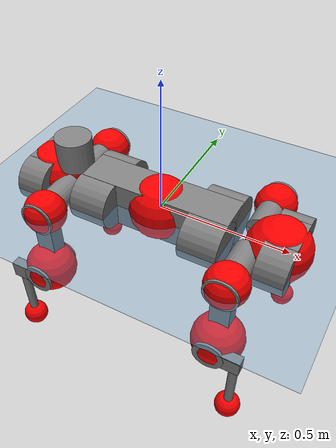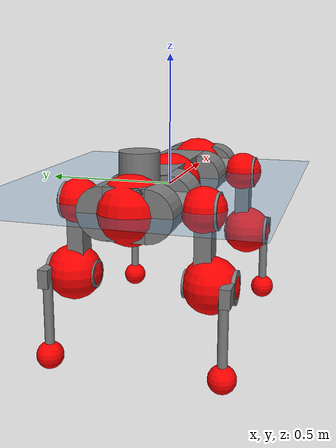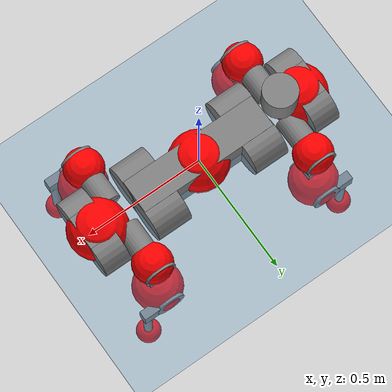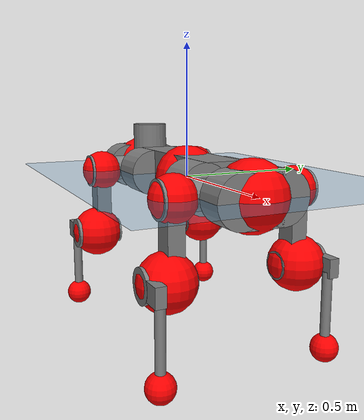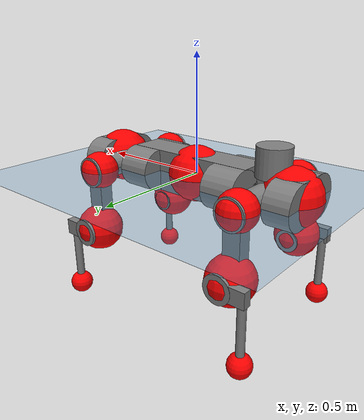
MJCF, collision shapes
<mujoco model="anymal_c">
  <compiler angle="radian" assetdir="assets" balanceinertia="true" inertiafromgeom="false"/>

  <option timestep="0.005" density="1.2" viscosity="2e-05"/>

  <size nkey="1"/>

  <visual>
    <quality shadowsize="8192"/>
    <map shadowclip="0.5"/>
  </visual>

  <default>
    <default class="/">
      <material specular="0" shininess="0.25"/>
      <geom contype="0" conaffinity="0" group="1" solref="-1000 -80"/>
      <site size="0.01 0.005 0.005" group="5"/>
      <general forcelimited="true" forcerange="-80 80" biastype="affine" gainprm="80" biasprm="0 -80 -2"/>
      <default class="anymal_c">
        <joint armature="0.01" damping="0.01" frictionloss="0.1"/>
        <default class="visual">
          <geom type="mesh" group="2"/>
          <default class="visual_zflip"/>
        </default>
        <default class="collision">
          <geom type="cylinder" group="3"/>
          <default class="foot">
            <geom size="0.03 0 0" type="sphere" condim="6" priority="1" friction="0.8 0.02 0.01" solimp="0.015 1 0.03"/>
          </default>
        </default>
      </default>
      <default class="reward_collision_sphere">
        <geom group="5" rgba="1 0 0 1"/>
      </default>
    </default>
  </default>

  <asset>
    <texture type="skybox" colorspace="auto" name="//unnamed_texture_0" builtin="gradient" rgb1="0.95 0.95 0.95" rgb2="0.95 0.95 0.95" width="100" height="600"/>
    <texture type="2d" colorspace="auto" name="texplane" builtin="checker" rgb1="0.345 0.575 0.748" rgb2="0.345 0.575 0.748" markrgb="1 1 1" width="512" height="512"/>
    <texture type="2d" colorspace="linear" name="base" file="base.png"/>
    <texture type="2d" colorspace="linear" name="top_shell" file="top_shell.png"/>
    <texture type="2d" colorspace="linear" name="bottom_shell" file="bottom_shell.png"/>
    <texture type="2d" colorspace="linear" name="remote" file="remote.png"/>
    <texture type="2d" colorspace="linear" name="hatch" file="hatch.png"/>
    <texture type="2d" colorspace="linear" name="handle" file="handle.png"/>
    <texture type="2d" colorspace="linear" name="face" file="face.png"/>
    <texture type="2d" colorspace="linear" name="battery" file="battery.png"/>
    <texture type="2d" colorspace="linear" name="lidar_cage" file="lidar_cage.png"/>
    <texture type="2d" colorspace="linear" name="depth_camera" file="depth_camera.png"/>
    <texture type="2d" colorspace="linear" name="wide_angle_camera" file="wide_angle_camera.png"/>
    <texture type="2d" colorspace="linear" name="lidar" file="lidar.png"/>
    <texture type="2d" colorspace="linear" name="drive" file="drive.png"/>
    <texture type="2d" colorspace="linear" name="hip_l" file="hip_l.png"/>
    <texture type="2d" colorspace="linear" name="shank_l" file="shank_l.png"/>
    <texture type="2d" colorspace="linear" name="foot" file="foot.png"/>
    <texture type="2d" colorspace="linear" name="thigh" file="thigh.png"/>
    <texture type="2d" colorspace="linear" name="shank_r" file="shank_r.png"/>
    <texture type="2d" colorspace="linear" name="hip_r" file="hip_r.png"/>
    <material name="MatPlane" class="/" texture="texplane" texuniform="true" texrepeat="2 2" specular="0.9" shininess="0.5"/>
    <material name="black_plastic" class="/" rgba="0.007 0.007 0.007 1"/>
    <material name="green" class="/" rgba="0.052 0.178 0.033 1"/>
    <material name="red" class="/" rgba="0.178 0.006 0.005 1"/>
    <material name="yellow" class="/" rgba="0.178 0.119 0.006 1"/>
    <material name="lwl" class="/" rgba="0.8 0.8 0.8 1"/>
    <material name="base" class="/" texture="base"/>
    <material name="top_shell" class="/" texture="top_shell"/>
    <material name="bottom_shell" class="/" texture="bottom_shell"/>
    <material name="hip_l" class="/" texture="hip_l"/>
    <material name="thigh" class="/" texture="thigh"/>
    <material name="shank_l" class="/" texture="shank_l"/>
    <material name="foot" class="/" texture="foot"/>
    <material name="hip_r" class="/" texture="hip_r"/>
    <material name="shank" class="/" texture="shank_r"/>
    <material name="hatch" class="/" texture="hatch"/>
    <material name="remote" class="/" texture="remote"/>
    <material name="handle" class="/" texture="handle"/>
    <material name="face" class="/" texture="face"/>
    <material name="depth_camera" class="/" texture="depth_camera"/>
    <material name="wide_angle_camera" class="/" texture="wide_angle_camera"/>
    <material name="battery" class="/" texture="battery"/>
    <material name="lidar_cage" class="/" texture="lidar_cage"/>
    <material name="lidar" class="/" texture="lidar"/>
    <material name="drive" class="/" texture="drive"/>
    <mesh name="base_0" class="/" file="base_0.obj"/>
    <mesh name="base_1" class="/" file="base_1.obj"/>
    <mesh name="base_2" class="/" file="base_2.obj"/>
    <mesh name="base_3" class="/" file="base_3.obj"/>
    <mesh name="base_4" class="/" file="base_4.obj"/>
    <mesh name="base_5" class="/" file="base_5.obj"/>
    <mesh name="top_shell" class="/" file="top_shell.obj"/>
    <mesh name="bottom_shell" class="/" file="bottom_shell.obj"/>
    <mesh name="remote" class="/" file="remote.obj"/>
    <mesh name="handle" class="/" file="handle.obj"/>
    <mesh name="face" class="/" file="face.obj"/>
    <mesh name="wide_angle_camera" class="/" file="wide_angle_camera.obj"/>
    <mesh name="depth_camera" class="/" file="depth_camera.obj"/>
    <mesh name="battery" class="/" file="battery.obj"/>
    <mesh name="lidar_cage" class="/" file="lidar_cage.obj"/>
    <mesh name="lidar" class="/" file="lidar.obj"/>
    <mesh name="drive" class="/" file="drive.obj"/>
    <mesh name="hip_l" class="/" file="hip_l.obj"/>
    <mesh name="thigh" class="/" file="thigh.obj"/>
    <mesh name="shank_l" class="/" file="shank_l.obj"/>
    <mesh name="foot" class="/" file="foot.obj"/>
    <mesh name="hip_r" class="/" file="hip_r.obj"/>
    <mesh name="hatch" class="/" file="hatch.obj"/>
    <mesh name="shank_r" class="/" file="shank_r.obj"/>
  </asset>

  <worldbody>
    <geom name="floor" class="/" size="100 100 0.125" type="plane" group="0" material="MatPlane"/>
    <light name="toplight_shadow" class="/" pos="0 0 5" dir="0.0990148 0.0990148 -0.990148" type="directional" ambient="0.04 0.04 0.04" diffuse="0.55 0.55 0.55" specular="0.12 0.12 0.12"/>
    <light name="toplight_fill" class="/" pos="0 0 5" dir="0.0990148 0.0990148 -0.990148" type="directional" castshadow="false" ambient="0.04 0.04 0.04" diffuse="0.3 0.3 0.3" specular="0.08 0.08 0.08"/>
    <body name="trunk" childclass="anymal_c" pos="0.000198232 -0.000155119 -0.000606586" quat="1 5.27108e-05 -0.000240101 7.67191e-05">
      <inertial pos="0.00253445 -0.00235404 0.0464725" quat="0.499857 0.499742 0.500464 0.499937" mass="19.5499" diaginertia="0.677148 0.867955 0.150367"/>
      <joint name="//unnamed_joint_0" type="free" armature="0" damping="0" frictionloss="0"/>
      <geom name="//unnamed_geom_1" class="visual" material="green" mesh="base_0"/>
      <geom name="//unnamed_geom_2" class="visual" material="yellow" mesh="base_1"/>
      <geom name="//unnamed_geom_3" class="visual" material="red" mesh="base_2"/>
      <geom name="//unnamed_geom_4" class="visual" material="black_plastic" mesh="base_3"/>
      <geom name="//unnamed_geom_5" class="visual" material="lwl" mesh="base_4"/>
      <geom name="//unnamed_geom_6" class="visual" material="base" mesh="base_5"/>
      <geom name="trunk_1" class="collision" size="0.292547 0.0706147 0.0907904" type="box"/>
      <geom name="trunk_2" class="collision" size="0.0907904 0.0731367" pos="0.221856 0.0750915 0" quat="0.707107 0 0.707107 0"/>
      <geom name="trunk_3" class="collision" size="0.0907904 0.0731367" pos="-0.221856 0.0750915 0" quat="0.707107 0 0.707107 0"/>
      <geom name="trunk_4" class="collision" size="0.0907904 0.0731367" pos="0.221856 -0.0750915 0" quat="0.707107 0 0.707107 0"/>
      <geom name="trunk_5" class="collision" size="0.0907904 0.0731367" pos="-0.221856 -0.0750915 0" quat="0.707107 0 0.707107 0"/>
      <geom name="//unnamed_geom_12" class="visual" material="top_shell" mesh="top_shell"/>
      <geom name="//unnamed_geom_13" class="visual" material="bottom_shell" mesh="bottom_shell"/>
      <geom name="//unnamed_geom_14" class="visual" material="remote" mesh="remote"/>
      <geom name="//unnamed_geom_15" class="visual" material="handle" mesh="handle"/>
      <geom name="//unnamed_geom_16" class="visual" pos="0.422802 0 0" quat="1 0 0 0" material="face" mesh="face"/>
      <geom name="trunk_6" class="collision" size="0.055483 0.0706147 0.0907904" pos="0.478904 0 0" type="box"/>
      <geom name="//unnamed_geom_18" class="collision" size="0.0907904 0.055483" pos="0.478904 0.0750915 0" quat="0.707107 0 0.707107 0"/>
      <geom name="//unnamed_geom_19" class="collision" size="0.0907904 0.055483" pos="0.478904 -0.0750915 0" quat="0.707107 0 0.707107 0"/>
      <geom name="//unnamed_geom_20" class="visual" pos="0.470893 0 -0.0266035" quat="0.965926 0 0.258819 0" material="depth_camera" mesh="depth_camera"/>
      <geom name="//unnamed_geom_21" class="visual" pos="0.523275 0 0.0139757" material="wide_angle_camera" mesh="wide_angle_camera"/>
      <geom name="//unnamed_geom_22" class="visual_zflip" pos="-0.422802 0 0" quat="0 0 0 1" material="face" mesh="face"/>
      <geom name="trunk_7" class="collision" size="0.055483 0.0706147 0.0907904" pos="-0.478904 0 0" quat="0 0 0 1" type="box"/>
      <geom name="//unnamed_geom_24" class="collision" size="0.0907904 0.055483" pos="-0.478904 -0.0750915 0" quat="0 -0.707107 0 0.707107"/>
      <geom name="//unnamed_geom_25" class="collision" size="0.0907904 0.055483" pos="-0.478904 0.0750915 0" quat="0 -0.707107 0 0.707107"/>
      <geom name="//unnamed_geom_26" class="visual" pos="-0.470893 0 -0.0266035" quat="0 -0.258819 0 0.965926" material="depth_camera" mesh="depth_camera"/>
      <geom name="//unnamed_geom_27" class="visual_zflip" pos="-0.523275 0 0.0139757" quat="0 0 0 1" material="wide_angle_camera" mesh="wide_angle_camera"/>
      <geom name="//unnamed_geom_28" class="visual" material="battery" mesh="battery"/>
      <geom name="//unnamed_geom_29" class="visual" pos="0 0.0827094 0.0277775" quat="0.683013 -0.183013 0.183013 0.683013" material="depth_camera" mesh="depth_camera"/>
      <geom name="//unnamed_geom_30" class="visual" pos="0 -0.0827094 0.0277775" quat="0.683013 0.183013 0.183013 -0.683013" material="depth_camera" mesh="depth_camera"/>
      <geom name="//unnamed_geom_31" class="visual" pos="-0.371291 0 0.0686181" quat="1 0 0 0" material="lidar_cage" mesh="lidar_cage"/>
      <geom name="trunk_8" class="collision" size="0.0706147 0.0605269" pos="-0.371291 0 0.124633"/>
      <geom name="//unnamed_geom_33" class="visual" pos="-0.371291 2.0707e-05 0.132755" quat="0.707107 0 0 -0.707107" material="lidar" mesh="lidar"/>
      <geom name="//unnamed_geom_34" class="visual" pos="0.305907 0.111515 2.40045e-09" quat="0.258819 0.965926 0 0" material="drive" mesh="drive"/>
      <geom name="//unnamed_geom_35" class="visual" pos="0.305907 -0.111515 -2.40045e-09" quat="0.258819 -0.965926 0 0" material="drive" mesh="drive"/>
      <geom name="//unnamed_geom_36" class="visual" pos="-0.305907 0.111515 -2.40045e-09" quat="0 0 0.965926 -0.258819" material="drive" mesh="drive"/>
      <geom name="//unnamed_geom_37" class="visual" pos="-0.305907 -0.111515 2.40045e-09" quat="0 0 -0.965926 -0.258819" material="drive" mesh="drive"/>
      <geom name="//unnamed_geom_38" class="visual" pos="0.118323 0 0.0681513" quat="1 0 0 0" material="hatch" mesh="hatch"/>
      <geom name="//unnamed_geom_39" class="reward_collision_sphere" size="0.121054"/>
      <geom name="//unnamed_geom_40" class="reward_collision_sphere" size="0.121054" pos="0.459013 0 0"/>
      <geom name="//unnamed_geom_41" class="reward_collision_sphere" size="0.121054" pos="-0.459013 0 0"/>
      <site name="imu" pos="0.266941 -0.0002121 0.0561442" size="0.0100878"/>
      <camera name="track" pos="0 -2.14547 0" quat="0.707107 0.707107 0 0" mode="trackcom"/>
      <camera name="ego_camera" pos="0.459013 0 -0.0373432" quat="-0.5 -0.5 0.5 0.5"/>
      <body name="LF_HIP" pos="0.306956 0.110508 0.00142844" quat="0.259316 0.965792 -0.0012746 -0.00015449">
        <inertial pos="0.058861 -0.015484 -0.00965321" quat="-0.128725 0.709048 -0.143398 0.67832" mass="2.67253" diaginertia="0.00623899 0.00659342 0.00230493"/>
        <joint name="LF_HAA" pos="0 0 0" axis="1 4.22224e-05 6.44362e-05" range="-0.767262 0.493855" armature="0.0108605" damping="0.0179337" frictionloss="0.104231"/>
        <geom name="//unnamed_geom_42" class="visual" pos="0 0.000141208 -2.31933e-05" quat="0.258819 -0.965926 0 0" material="hip_l" mesh="hip_l"/>
        <geom name="//unnamed_geom_43" class="visual" pos="0.0610997 -0.0746799 -0.0420872" quat="0.183013 -0.683013 0.683013 0.183013" material="drive" mesh="drive"/>
        <geom name="//unnamed_geom_44" class="collision" size="0.0504391 0.0706147" pos="0.0610997 -0.0128297 -0.00644637" quat="-0.353553 -0.612372 0.612372 -0.353553"/>
        <body name="LF_THIGH" pos="0.0609561 -0.0802293 -0.0374044" quat="0.182961 -0.683023 0.683027 0.182973">
          <inertial pos="0.0321747 0.000879474 -0.231226" quat="0.993081 -0.00414853 -0.0813044 0.0846324" mass="3.30767" diaginertia="0.0330784 0.0431637 0.00313343"/>
          <joint name="LF_HFE" pos="0 0 0" axis="0.999948 -0.0046145 0.00908076" range="-3.1629 3.1873" armature="0.0112774" damping="0.00959884" frictionloss="0.105676"/>
          <geom name="//unnamed_geom_45" class="visual" pos="-0.00104865 -1.65243e-06 0" quat="0.707107 0 0 -0.707107" material="thigh" mesh="thigh"/>
          <geom name="//unnamed_geom_46" class="collision" size="0.0655708 0.0403513" pos="0.0408012 0 0" quat="0.5 0.5 -0.5 -0.5"/>
          <geom name="//unnamed_geom_47" class="collision" size="0.0378293 0.0302635 0.142555" pos="0.0306009 0 -0.131928" quat="0.707107 0 0 -0.707107" type="box"/>
          <geom name="//unnamed_geom_48" class="visual" pos="0.102309 0 -0.26607" quat="1 0 0 0" material="drive" mesh="drive"/>
          <geom name="//unnamed_geom_49" class="collision" size="0.0504391 0.0706147" pos="0.0309069 0 -0.26607" quat="0.707107 0 0.707107 0"/>
          <geom name="//unnamed_geom_50" class="reward_collision_sphere" size="0.0807025" pos="0.0255007 0 0"/>
          <body name="LF_SHANK" pos="0.100249 0.000770243 -0.265771" quat="1 -0.00048289 -0.000585302 -0.000617054">
            <inertial pos="0.00523053 -0.065854 -0.0751296" quat="0.992913 -0.11593 -0.00206388 -0.0260742" mass="0.582251" diaginertia="0.0111954 0.0134468 0.000794294"/>
            <joint name="LF_KFE" pos="0 0 0" axis="0.999945 -0.0068747 -0.00790534" range="-3.11239 3.09975" armature="0.00894894" damping="0.00426145" frictionloss="0.0979147"/>
            <geom name="//unnamed_geom_51" class="visual" pos="-0.000341943 -0.00182326 0" quat="0.707107 0 0 -0.707107" material="shank_l" mesh="shank_l"/>
            <geom name="LF_kfe_act" class="collision" size="0.0605269 0.0201756" pos="0.0204006 0 0" quat="0.5 0.5 -0.5 -0.5"/>
            <geom name="//unnamed_geom_53" class="collision" size="0.0580039 0.0340464 0.0191669" pos="0.0204006 -0.0616812 0" quat="0.5 0.5 -0.5 -0.5" type="box"/>
            <geom name="//unnamed_geom_54" class="visual" pos="0.0133115 -0.0949347 -0.315522" quat="0.382683 0 0 -0.92388" material="foot" mesh="foot"/>
            <geom name="LF_calf" class="collision" size="0.0176537 0.142492" pos="0.0133114 -0.0943471 -0.157761" quat="0.707107 0 0 -0.707107"/>
            <geom name="LF_foot" class="foot" size="0.0295174" pos="0.0133114 -0.0943471 -0.294517" quat="0.707107 0 0 -0.707107"/>
            <geom name="//unnamed_geom_57" class="reward_collision_sphere" size="0.100878" pos="-0.0510015 0 0"/>
            <geom name="//unnamed_geom_58" class="reward_collision_sphere" size="0.0504391" pos="0.0133114 -0.0943471 -0.294517"/>
            <site name="LF_foot" class="foot" pos="0.0133114 -0.0943471 -0.294517" quat="0.707107 0 0 -0.707107" size="0.0100878"/>
          </body>
        </body>
      </body>
      <body name="RF_HIP" pos="0.308924 -0.112898 0.000914227" quat="0.258673 -0.965965 0.000115336 -0.000135236">
        <inertial pos="0.0586251 0.0187112 -0.00982565" quat="0.132069 0.677746 0.128647 0.711806" mass="3.00368" diaginertia="0.00656158 0.00693079 0.00232976"/>
        <joint name="RF_HAA" pos="0 0 0" axis="0.999981 0.00593735 -0.00148548" stiffness="0.00628243" range="-0.491641 0.757658" armature="0.0105031" damping="0.0227356" frictionloss="0.0947395"/>
        <geom name="//unnamed_geom_59" class="visual" pos="0 -0.000141207 -2.31932e-05" quat="0.258819 0.965926 0 0" material="hip_r" mesh="hip_r"/>
        <geom name="//unnamed_geom_60" class="visual" pos="0.0610997 0.0746799 -0.0420872" quat="0.183013 0.683013 0.683013 -0.183013" material="drive" mesh="drive"/>
        <geom name="//unnamed_geom_61" class="collision" size="0.0504391 0.0706147" pos="0.0610997 0.0128297 -0.00644637" quat="-0.353553 0.612372 0.612372 0.353553"/>
        <body name="RF_THIGH" pos="0.0580237 0.0792977 -0.0395596" quat="0.182842 0.682539 0.683089 -0.184661">
          <inertial pos="0.0309132 -0.00165682 -0.229087" quat="0.992452 -0.00588941 -0.0837964 0.0893464" mass="2.93917" diaginertia="0.0327666 0.0394452 0.00291923"/>
          <joint name="RF_HFE" pos="0 0 0" axis="0.999938 0.00617667 0.00921505" stiffness="0.00453009" range="-3.21174 3.17758" armature="0.00970716" damping="0.011304" frictionloss="0.0886549"/>
          <geom name="//unnamed_geom_62" class="visual" pos="-0.00104865 -1.65243e-06 0" quat="0.707107 0 0 -0.707107" material="thigh" mesh="thigh"/>
          <geom name="//unnamed_geom_63" class="collision" size="0.0655708 0.0403513" pos="0.0408012 0 0" quat="0.5 0.5 0.5 0.5"/>
          <geom name="//unnamed_geom_64" class="collision" size="0.0378293 0.0302635 0.142555" pos="0.0306009 0 -0.131928" quat="0.707107 0 0 0.707107" type="box"/>
          <geom name="//unnamed_geom_65" class="visual" pos="0.102309 0 -0.26607" quat="1 0 0 0" material="drive" mesh="drive"/>
          <geom name="//unnamed_geom_66" class="collision" size="0.0504391 0.0706147" pos="0.0309069 0 -0.26607" quat="0.707107 0 0.707107 0"/>
          <geom name="//unnamed_geom_67" class="reward_collision_sphere" size="0.0807025" pos="0.0255007 0 0"/>
          <body name="RF_SHANK" pos="0.10002 0.002797 -0.264185" quat="1 -5.84319e-05 -0.000857941 0.000466272">
            <inertial pos="0.0031663 0.0633214 -0.0782211" quat="0.992886 0.11819 0.00443986 0.0137708" mass="0.628696" diaginertia="0.0113591 0.0131314 0.000794565"/>
            <joint name="RF_KFE" pos="0 0 0" axis="0.999828 0.0145005 0.0115553" range="-3.08327 3.15183" armature="0.0100815" damping="0.01782" frictionloss="0.118869"/>
            <geom name="//unnamed_geom_68" class="visual" pos="-0.000341941 0.00182326 0" quat="0.707107 0 0 0.707107" material="shank" mesh="shank_r"/>
            <geom name="RF_kfe_act" class="collision" size="0.0605269 0.0201756" pos="0.0204006 0 0" quat="0.5 0.5 0.5 0.5"/>
            <geom name="//unnamed_geom_70" class="collision" size="0.0580039 0.0340464 0.0191669" pos="0.0204006 0.0616812 0" quat="0.5 0.5 0.5 0.5" type="box"/>
            <geom name="//unnamed_geom_71" class="visual" pos="0.0133113 0.0949347 -0.315522" quat="0.382683 0 0 0.92388" material="foot" mesh="foot"/>
            <geom name="RF_calf" class="collision" size="0.0176537 0.142492" pos="0.0133114 0.0943471 -0.157761" quat="0.707107 0 0 0.707107"/>
            <geom name="RF_foot" class="foot" size="0.0305066" pos="0.0133114 0.0943471 -0.294517" quat="0.707107 0 0 0.707107"/>
            <geom name="//unnamed_geom_74" class="reward_collision_sphere" size="0.100878" pos="-0.0510015 0 0"/>
            <geom name="//unnamed_geom_75" class="reward_collision_sphere" size="0.0504391" pos="0.0133114 0.0943471 -0.294517"/>
            <site name="RF_foot" class="foot" pos="0.0133114 0.0943471 -0.294517" quat="0.707107 0 0 0.707107" size="0.0100878"/>
          </body>
        </body>
      </body>
      <body name="LH_HIP" pos="-0.307452 0.1119 0.00164596" quat="-0.000178568 -0.000361383 0.965897 -0.258924">
        <inertial pos="0.0557909 0.0171731 -0.00592359" quat="0.138409 0.669734 0.113428 0.720717" mass="2.9939" diaginertia="0.00668842 0.00709112 0.00226627"/>
        <joint name="LH_HAA" pos="0 0 0" axis="0.999997 0.00118802 -0.00195202" range="-0.446302 0.678673" armature="0.0101864" damping="0.00174413" frictionloss="0.111135"/>
        <geom name="//unnamed_geom_76" class="visual" pos="0 -0.000141207 -2.31932e-05" quat="-0.258819 -0.965926 0 0" material="hip_r" mesh="hip_r"/>
        <geom name="//unnamed_geom_77" class="visual" pos="0.0610997 0.0746799 -0.0420872" quat="0.183013 0.683013 0.683013 -0.183013" material="drive" mesh="drive"/>
        <geom name="//unnamed_geom_78" class="collision" size="0.0504391 0.0706147" pos="0.0610997 0.0128297 -0.00644637" quat="-0.353553 0.612372 0.612372 0.353553"/>
        <body name="LH_THIGH" pos="0.0610599 0.0786137 -0.0403518" quat="0.183187 0.683374 0.682401 -0.183769">
          <inertial pos="0.0288693 -0.000704149 -0.229092" quat="0.991618 0.00354579 -0.0874436 0.0950514" mass="3.08621" diaginertia="0.031721 0.0404484 0.00296973"/>
          <joint name="LH_HFE" pos="0 0 0" axis="0.999999 0.00134181 0.000558638" stiffness="0.0079138" range="-3.15043 3.12733" armature="0.0101407" damping="0" frictionloss="0.10312"/>
          <geom name="//unnamed_geom_79" class="visual" pos="-0.00104865 -1.65243e-06 0" quat="0.707107 0 0 -0.707107" material="thigh" mesh="thigh"/>
          <geom name="//unnamed_geom_80" class="collision" size="0.0655708 0.0403513" pos="0.0408012 0 0" quat="0.5 0.5 -0.5 -0.5"/>
          <geom name="//unnamed_geom_81" class="collision" size="0.0378293 0.0302635 0.142555" pos="0.0306009 0 -0.131928" quat="0.707107 0 0 -0.707107" type="box"/>
          <geom name="//unnamed_geom_82" class="visual" pos="0.102309 0 -0.26607" quat="1 0 0 0" material="drive" mesh="drive"/>
          <geom name="//unnamed_geom_83" class="collision" size="0.0504391 0.0706147" pos="0.0309069 0 -0.26607" quat="0.707107 0 0.707107 0"/>
          <geom name="//unnamed_geom_84" class="reward_collision_sphere" size="0.0807025" pos="0.0255007 0 0"/>
          <body name="LH_SHANK" pos="0.102346 -0.00196332 -0.265564" quat="1 -8.28302e-05 -0.000265798 -6.3615e-05">
            <inertial pos="0.00556205 0.0629608 -0.0761779" quat="0.993035 0.115069 -0.00117894 0.0252936" mass="0.582454" diaginertia="0.0102938 0.0121782 0.000714735"/>
            <joint name="LH_KFE" pos="0 0 0" axis="0.999988 -0.00473542 0.00143358" range="-3.14685 3.22311" armature="0.0103055" damping="0.00712062" frictionloss="0.111904"/>
            <geom name="//unnamed_geom_85" class="visual" pos="-0.000341941 0.00182326 0" quat="-0.707107 0 0 -0.707107" material="shank" mesh="shank_r"/>
            <geom name="LH_kfe_act" class="collision" size="0.0605269 0.0201756" pos="0.0204006 0 0" quat="0.5 0.5 -0.5 -0.5"/>
            <geom name="//unnamed_geom_87" class="collision" size="0.0580039 0.0340464 0.0191669" pos="0.0204006 0.0616812 0" quat="0.5 0.5 -0.5 -0.5" type="box"/>
            <geom name="//unnamed_geom_88" class="visual" pos="0.0133113 0.0949347 -0.315522" quat="-0.382683 0 0 -0.92388" material="foot" mesh="foot"/>
            <geom name="LH_calf" class="collision" size="0.0176537 0.142492" pos="0.0133114 0.0943471 -0.157761" quat="0.707107 0 0 -0.707107"/>
            <geom name="LH_foot" class="foot" size="0.0334553" pos="0.0133114 0.0943471 -0.294517" quat="0.707107 0 0 -0.707107"/>
            <geom name="//unnamed_geom_91" class="reward_collision_sphere" size="0.100878" pos="-0.0510015 0 0"/>
            <geom name="//unnamed_geom_92" class="reward_collision_sphere" size="0.0504391" pos="0.0133114 0.0943471 -0.294517"/>
            <site name="LH_foot" class="foot" pos="0.0133114 0.0943471 -0.294517" quat="0.707107 0 0 -0.707107" size="0.0100878"/>
          </body>
        </body>
      </body>
      <body name="RH_HIP" pos="-0.30483 -0.111925 0.00215415" quat="8.60675e-05 -0.000478814 -0.965933 -0.25879">
        <inertial pos="0.0601466 -0.0143089 -0.0102489" quat="-0.118471 0.703254 -0.126775 0.689439" mass="2.72472" diaginertia="0.00648637 0.00670753 0.0022898"/>
        <joint name="RH_HAA" pos="0 0 0" axis="0.999895 0.0109881 -0.00942673" range="-0.702629 0.543959" armature="0.0107553" damping="0.00461181" frictionloss="0.107539"/>
        <geom name="//unnamed_geom_93" class="visual" pos="0 0.000141208 -2.31933e-05" quat="-0.258819 0.965926 0 0" material="hip_l" mesh="hip_l"/>
        <geom name="//unnamed_geom_94" class="visual" pos="0.0610997 -0.0746799 -0.0420872" quat="-0.183013 0.683013 -0.683013 -0.183013" material="drive" mesh="drive"/>
        <geom name="//unnamed_geom_95" class="collision" size="0.0504391 0.0706147" pos="0.0610997 -0.0128297 -0.00644637" quat="0.353553 0.612372 -0.612372 0.353553"/>
        <body name="RH_THIGH" pos="0.0593602 -0.0793333 -0.0363249" quat="-0.183041 0.68311 -0.682917 -0.182977">
          <inertial pos="0.0314865 -0.00373799 -0.227582" quat="0.993201 -0.00553537 -0.0800936 0.0842976" mass="3.30933" diaginertia="0.0349308 0.0448501 0.00307261"/>
          <joint name="RH_HFE" pos="0 0 0" axis="0.999984 -0.00427928 -0.00382032" range="-3.0911 3.18013" armature="0.00811877" damping="0.00467792" frictionloss="0.114235"/>
          <geom name="//unnamed_geom_96" class="visual" pos="-0.00104865 -1.65243e-06 0" quat="0.707107 0 0 -0.707107" material="thigh" mesh="thigh"/>
          <geom name="//unnamed_geom_97" class="collision" size="0.0655708 0.0403513" pos="0.0408012 0 0" quat="0.5 0.5 0.5 0.5"/>
          <geom name="//unnamed_geom_98" class="collision" size="0.0378293 0.0302635 0.142555" pos="0.0306009 0 -0.131928" quat="0.707107 0 0 0.707107" type="box"/>
          <geom name="//unnamed_geom_99" class="visual" pos="0.102309 0 -0.26607" quat="1 0 0 0" material="drive" mesh="drive"/>
          <geom name="//unnamed_geom_100" class="collision" size="0.0504391 0.0706147" pos="0.0309069 0 -0.26607" quat="0.707107 0 0.707107 0"/>
          <geom name="//unnamed_geom_101" class="reward_collision_sphere" size="0.0807025" pos="0.0255007 0 0"/>
          <body name="RH_SHANK" pos="0.104828 -1.17235e-05 -0.262806" quat="1 5.56927e-05 5.07598e-05 0.000165988">
            <inertial pos="0.00774826 -0.0647256 -0.0751143" quat="0.993321 -0.11443 -0.00637428 -0.0133567" mass="0.600491" diaginertia="0.0112198 0.012359 0.000736298"/>
            <joint name="RH_KFE" pos="0 0 0" axis="0.999965 0.00835943 -5.92436e-05" range="-3.14305 3.11087" armature="0.0101409" damping="0.00787245" frictionloss="0.109435"/>
            <geom name="//unnamed_geom_102" class="visual" pos="-0.000341943 -0.00182326 0" quat="0.707107 0 0 -0.707107" material="shank_l" mesh="shank_l"/>
            <geom name="RH_kfe_act" class="collision" size="0.0605269 0.0201756" pos="0.0204006 0 0" quat="0.5 0.5 0.5 0.5"/>
            <geom name="//unnamed_geom_104" class="collision" size="0.0580039 0.0340464 0.0191669" pos="0.0204006 -0.0616812 0" quat="0.5 0.5 0.5 0.5" type="box"/>
            <geom name="//unnamed_geom_105" class="visual" pos="0.0133115 -0.0949347 -0.315522" quat="0.382683 0 0 -0.92388" material="foot" mesh="foot"/>
            <geom name="RH_calf" class="collision" size="0.0176537 0.142492" pos="0.0133114 -0.0943471 -0.157761" quat="0.707107 0 0 0.707107"/>
            <geom name="RH_foot" class="foot" size="0.0344716" pos="0.0133114 -0.0943471 -0.294517" quat="0.707107 0 0 0.707107"/>
            <geom name="//unnamed_geom_108" class="reward_collision_sphere" size="0.100878" pos="-0.0510015 0 0"/>
            <geom name="//unnamed_geom_109" class="reward_collision_sphere" size="0.0504391" pos="0.0133114 -0.0943471 -0.294517"/>
            <site name="RH_foot" class="foot" pos="0.0133114 -0.0943471 -0.294517" quat="0.707107 0 0 0.707107" size="0.0100878"/>
          </body>
        </body>
      </body>
    </body>
  </worldbody>

  <contact>
    <pair class="/" geom1="floor" geom2="LF_foot" name="//unnamed_contact_0"/>
    <pair class="/" geom1="floor" geom2="RF_foot" name="//unnamed_contact_1"/>
    <pair class="/" geom1="floor" geom2="LH_foot" name="//unnamed_contact_2"/>
    <pair class="/" geom1="floor" geom2="RH_foot" name="//unnamed_contact_3"/>
  </contact>

  <actuator>
    <general name="LF_HAA" class="/" joint="LF_HAA" forcerange="-75.5959 75.5959" gainprm="76.8873" biasprm="0 -76.8873 -2.12693"/>
    <general name="LF_HFE" class="/" joint="LF_HFE" forcerange="-91.1862 91.1862" gainprm="76.8873" biasprm="0 -76.8873 -2.12693"/>
    <general name="LF_KFE" class="/" joint="LF_KFE" forcerange="-88.1331 88.1331" gainprm="76.8873" biasprm="0 -76.8873 -2.12693"/>
    <general name="RF_HAA" class="/" joint="RF_HAA" forcerange="-73.7354 73.7354" gainprm="76.8873" biasprm="0 -76.8873 -2.12693"/>
    <general name="RF_HFE" class="/" joint="RF_HFE" forcerange="-90.0682 90.0682" gainprm="76.8873" biasprm="0 -76.8873 -2.12693"/>
    <general name="RF_KFE" class="/" joint="RF_KFE" forcerange="-73.9392 73.9392" gainprm="76.8873" biasprm="0 -76.8873 -2.12693"/>
    <general name="LH_HAA" class="/" joint="LH_HAA" forcerange="-84.009 84.009" gainprm="76.8873" biasprm="0 -76.8873 -2.12693"/>
    <general name="LH_HFE" class="/" joint="LH_HFE" forcerange="-80.3914 80.3914" gainprm="76.8873" biasprm="0 -76.8873 -2.12693"/>
    <general name="LH_KFE" class="/" joint="LH_KFE" forcerange="-74.9668 74.9668" gainprm="76.8873" biasprm="0 -76.8873 -2.12693"/>
    <general name="RH_HAA" class="/" joint="RH_HAA" forcerange="-90.564 90.564" gainprm="76.8873" biasprm="0 -76.8873 -2.12693"/>
    <general name="RH_HFE" class="/" joint="RH_HFE" forcerange="-75.5397 75.5397" gainprm="76.8873" biasprm="0 -76.8873 -2.12693"/>
    <general name="RH_KFE" class="/" joint="RH_KFE" forcerange="-74.1328 74.1328" gainprm="76.8873" biasprm="0 -76.8873 -2.12693"/>
  </actuator>

  <sensor>
    <gyro site="imu" name="imu_angular_velocity"/>
    <velocimeter site="imu" name="imu_linear_velocity"/>
    <framelinvel objtype="site" objname="LF_foot" name="LF_foot_global_linear_velocity"/>
    <framelinvel objtype="site" objname="RF_foot" name="RF_foot_global_linear_velocity"/>
    <framelinvel objtype="site" objname="LH_foot" name="LH_foot_global_linear_velocity"/>
    <framelinvel objtype="site" objname="RH_foot" name="RH_foot_global_linear_velocity"/>
  </sensor>

  <keyframe>
    <key name="home" qpos="0 0 0.55 1 0 0 0 0 0.4 -0.8 0 -0.4 0.8 0 -0.4 0.8 0 0.4 -0.8"/>
  </keyframe>
</mujoco>
